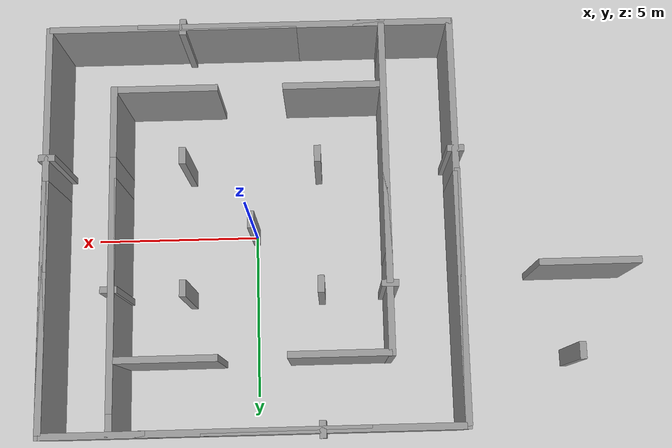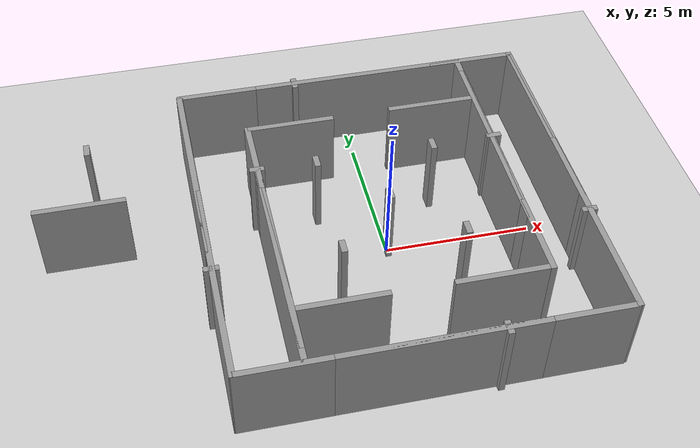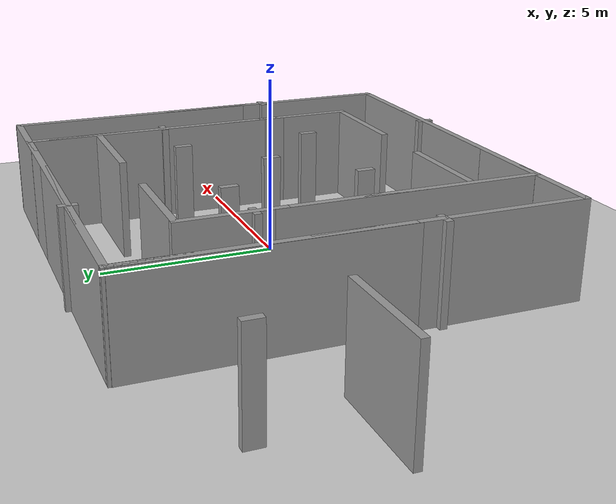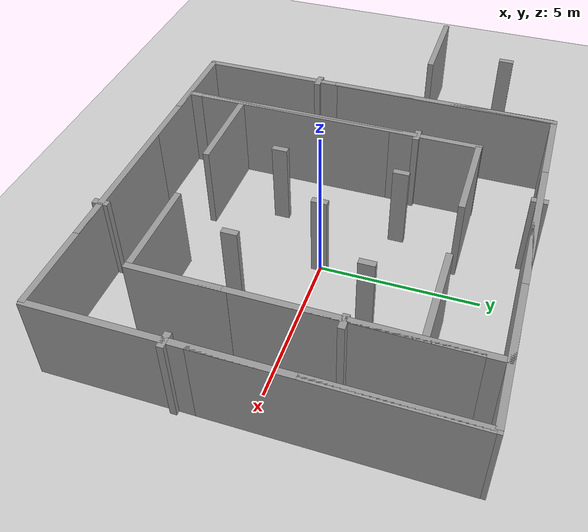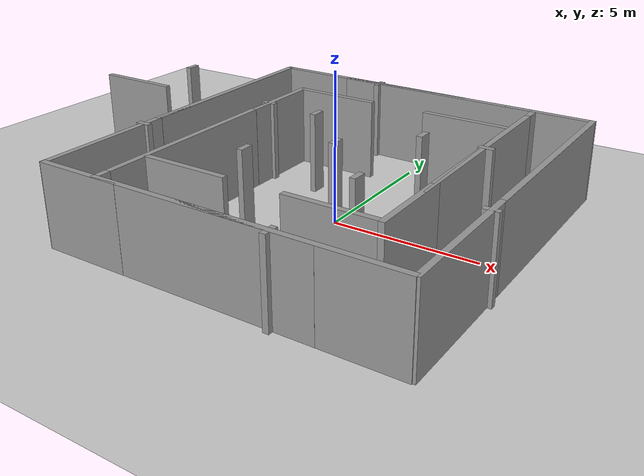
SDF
<sdf version="1.6">
 <world name="default">
  <light name="sun" type="directional">
   <pose>0 0 10 0 -0 0</pose>
   <diffuse>0.8 0.8 0.8 1</diffuse>
   <specular>0.2 0.2 0.2 1</specular>
   <attenuation>
    <range>1000</range>
    <constant>0.9</constant>
    <linear>0.01</linear>
    <quadratic>0.001</quadratic>
   </attenuation>
   <direction>-0.5 0.1 -0.9</direction>
  </light>
  <model name="ground_plane">
   <static>1</static>
   <link name="link">
    <collision name="collision">
     <geometry><plane><normal>0 0 1</normal><size>100 100</size></plane></geometry>
     <surface>
      <contact><collide_bitmask>65535</collide_bitmask></contact>
      <friction><ode><mu>100</mu><mu2>50</mu2></ode></friction>
     </surface>
    </collision>
    <visual name="visual">
     <cast_shadows>0</cast_shadows>
     <geometry><plane><normal>0 0 1</normal><size>100 100</size></plane></geometry>
     <material>
      <script><uri>file://media/materials/scripts/gazebo.material</uri><name>Gazebo/Grey</name></script>
     </material>
    </visual>
   </link>
  </model>
  <gravity>0 0 -9.8</gravity>
  <magnetic_field>6e-06 2.3e-05 -4.2e-05</magnetic_field>
  <atmosphere type="adiabatic"/>
  <physics name="default_physics" default="0" type="ode">
   <max_step_size>0.001</max_step_size>
   <real_time_factor>1</real_time_factor>
   <real_time_update_rate>1000</real_time_update_rate>
  </physics>
  <scene><ambient>0.4 0.4 0.4 1</ambient><background>0.7 0.7 0.7 1</background><shadows>1</shadows></scene>
  <audio><device>default</device></audio>
  <spherical_coordinates>
   <surface_model>EARTH_WGS84</surface_model>
   <latitude_deg>0</latitude_deg>
   <longitude_deg>0</longitude_deg>
   <elevation>0</elevation>
   <heading_deg>0</heading_deg>
  </spherical_coordinates>
  <model name="grey_wall_0">
   <static>1</static>
   <link name="link">
    <pose>0 0 1.4 0 -0 0</pose>
    <collision name="collision"><geometry><box><size>0.5 0.2 2.8</size></box></geometry></collision>
    <visual name="visual">
     <cast_shadows>0</cast_shadows>
     <geometry><box><size>0.5 0.2 2.8</size></box></geometry>
     <material>
      <script>
       <uri>model://grey_wall/materials/scripts</uri>
       <uri>model://grey_wall/materials/textures</uri>
       <name>vrc/grey_wall</name>
      </script>
     </material>
    </visual>
   </link>
   <pose>-9.43423 4.05192 0 0 -0 1.57</pose>
  </model>
  <model name="grey_wall_1">
   <static>1</static>
   <link name="link">
    <pose>0 0 1.4 0 -0 0</pose>
    <collision name="collision"><geometry><box><size>7.5 0.2 2.8</size></box></geometry></collision>
    <visual name="visual">
     <cast_shadows>0</cast_shadows>
     <geometry><box><size>7.5 0.2 2.8</size></box></geometry>
     <material>
      <script>
       <uri>model://grey_wall/materials/scripts</uri>
       <uri>model://grey_wall/materials/textures</uri>
       <name>vrc/grey_wall</name>
      </script>
     </material>
    </visual>
   </link>
   <pose>4.06703 1.74861 0 0 -0 1.57</pose>
  </model>
  <model name="grey_wall_1_clone">
   <static>1</static>
   <link name="link">
    <pose>0 0 1.4 0 -0 0</pose>
    <collision name="collision"><geometry><box><size>7.5 0.2 2.8</size></box></geometry></collision>
    <visual name="visual">
     <cast_shadows>0</cast_shadows>
     <geometry><box><size>7.5 0.2 2.8</size></box></geometry>
     <material>
      <script>
       <uri>model://grey_wall/materials/scripts</uri>
       <uri>model://grey_wall/materials/textures</uri>
       <name>vrc/grey_wall</name>
      </script>
     </material>
    </visual>
   </link>
   <pose>-4.00257 -1.78972 0 0 -0 1.57</pose>
  </model>
  <model name="grey_wall_1_clone_clone">
   <static>1</static>
   <link name="link">
    <pose>0 0 1.4 0 -0 0</pose>
    <collision name="collision"><geometry><box><size>7.5 0.2 2.8</size></box></geometry></collision>
    <visual name="visual">
     <cast_shadows>0</cast_shadows>
     <geometry><box><size>7.5 0.2 2.8</size></box></geometry>
     <material>
      <script>
       <uri>model://grey_wall/materials/scripts</uri>
       <uri>model://grey_wall/materials/textures</uri>
       <name>vrc/grey_wall</name>
      </script>
     </material>
    </visual>
   </link>
   <pose>-4.00463 -2.27948 0 0 -0 1.57</pose>
  </model>
  <model name="grey_wall_clone_clone_clone">
   <static>1</static>
   <link name="link">
    <pose>0 0 1.4 0 -0 0</pose>
    <collision name="collision"><geometry><box><size>7.5 0.2 2.8</size></box></geometry></collision>
    <visual name="visual">
     <cast_shadows>0</cast_shadows>
     <geometry><box><size>7.5 0.2 2.8</size></box></geometry>
     <material>
      <script>
       <uri>model://grey_wall/materials/scripts</uri>
       <uri>model://grey_wall/materials/textures</uri>
       <name>vrc/grey_wall</name>
      </script>
     </material>
    </visual>
   </link>
   <pose>-0.358299 -6.03778 0 0 -0 0</pose>
  </model>
  <model name="grey_wall_clone_clone_clone_0">
   <static>1</static>
   <link name="link">
    <pose>0 0 1.4 0 -0 0</pose>
    <collision name="collision"><geometry><box><size>7.5 0.2 2.8</size></box></geometry></collision>
    <visual name="visual">
     <cast_shadows>0</cast_shadows>
     <geometry><box><size>7.5 0.2 2.8</size></box></geometry>
     <material>
      <script>
       <uri>model://grey_wall/materials/scripts</uri>
       <uri>model://grey_wall/materials/textures</uri>
       <name>vrc/grey_wall</name>
      </script>
     </material>
    </visual>
   </link>
   <pose>2.3111 -6.03619 0 0 -0 0</pose>
  </model>
  <model name="grey_wall_1_clone_0">
   <static>1</static>
   <link name="link">
    <pose>0 0 1.4 0 -0 0</pose>
    <collision name="collision"><geometry><box><size>7.5 0.2 2.8</size></box></geometry></collision>
    <visual name="visual">
     <cast_shadows>0</cast_shadows>
     <geometry><box><size>7.5 0.2 2.8</size></box></geometry>
     <material>
      <script>
       <uri>model://grey_wall/materials/scripts</uri>
       <uri>model://grey_wall/materials/textures</uri>
       <name>vrc/grey_wall</name>
      </script>
     </material>
    </visual>
   </link>
   <pose>6.05369 -2.35434 0 0 -0 1.57</pose>
  </model>
  <model name="grey_wall_1_clone_1">
   <static>1</static>
   <link name="link">
    <pose>0 0 1.4 0 -0 0</pose>
    <collision name="collision"><geometry><box><size>7.5 0.2 2.8</size></box></geometry></collision>
    <visual name="visual">
     <cast_shadows>0</cast_shadows>
     <geometry><box><size>7.5 0.2 2.8</size></box></geometry>
     <material>
      <script>
       <uri>model://grey_wall/materials/scripts</uri>
       <uri>model://grey_wall/materials/textures</uri>
       <name>vrc/grey_wall</name>
      </script>
     </material>
    </visual>
   </link>
   <pose>6.05862 2.29556 0 0 -0 1.57</pose>
  </model>
  <model name="grey_wall_0_clone">
   <static>1</static>
   <link name="link">
    <pose>0 0 1.4 0 -0 0</pose>
    <collision name="collision"><geometry><box><size>7.5 0.2 2.8</size></box></geometry></collision>
    <visual name="visual">
     <cast_shadows>0</cast_shadows>
     <geometry><box><size>7.5 0.2 2.8</size></box></geometry>
     <material>
      <script>
       <uri>model://grey_wall/materials/scripts</uri>
       <uri>model://grey_wall/materials/textures</uri>
       <name>vrc/grey_wall</name>
      </script>
     </material>
    </visual>
   </link>
   <pose>0.395945 6.07878 0 0 -0 0</pose>
  </model>
  <model name="grey_wall_0_clone_0">
   <static>1</static>
   <link name="link">
    <pose>0 0 1.4 0 -0 0</pose>
    <collision name="collision"><geometry><box><size>7.5 0.2 2.8</size></box></geometry></collision>
    <visual name="visual">
     <cast_shadows>0</cast_shadows>
     <geometry><box><size>7.5 0.2 2.8</size></box></geometry>
     <material>
      <script>
       <uri>model://grey_wall/materials/scripts</uri>
       <uri>model://grey_wall/materials/textures</uri>
       <name>vrc/grey_wall</name>
      </script>
     </material>
    </visual>
   </link>
   <pose>-2.27392 6.07905 0 0 -0 0</pose>
  </model>
  <model name="grey_wall_1_clone_clone_clone">
   <static>1</static>
   <link name="link">
    <pose>0 0 1.4 0 -0 0</pose>
    <collision name="collision"><geometry><box><size>7.5 0.2 2.8</size></box></geometry></collision>
    <visual name="visual">
     <cast_shadows>0</cast_shadows>
     <geometry><box><size>7.5 0.2 2.8</size></box></geometry>
     <material>
      <script>
       <uri>model://grey_wall/materials/scripts</uri>
       <uri>model://grey_wall/materials/textures</uri>
       <name>vrc/grey_wall</name>
      </script>
     </material>
    </visual>
   </link>
   <pose>-6.06651 2.42489 0 0 -0 1.57</pose>
  </model>
  <model name="grey_wall_1_clone_clone_clone_0">
   <static>1</static>
   <link name="link">
    <pose>0 0 1.4 0 -0 0</pose>
    <collision name="collision"><geometry><box><size>7.5 0.2 2.8</size></box></geometry></collision>
    <visual name="visual">
     <cast_shadows>0</cast_shadows>
     <geometry><box><size>7.5 0.2 2.8</size></box></geometry>
     <material>
      <script>
       <uri>model://grey_wall/materials/scripts</uri>
       <uri>model://grey_wall/materials/textures</uri>
       <name>vrc/grey_wall</name>
      </script>
     </material>
    </visual>
   </link>
   <pose>-6.07531 -2.38028 0 0 -0 1.57</pose>
  </model>
  <model name="grey_wall_1_clone_2">
   <static>1</static>
   <link name="link">
    <pose>0 0 1.4 0 -0 0</pose>
    <collision name="collision"><geometry><box><size>7.5 0.2 2.8</size></box></geometry></collision>
    <visual name="visual">
     <cast_shadows>0</cast_shadows>
     <geometry><box><size>7.5 0.2 2.8</size></box></geometry>
     <material>
      <script>
       <uri>model://grey_wall/materials/scripts</uri>
       <uri>model://grey_wall/materials/textures</uri>
       <name>vrc/grey_wall</name>
      </script>
     </material>
    </visual>
   </link>
   <pose>4.06582 2.38886 0 0 -0 1.57</pose>
  </model>
  <model name="grey_wall_1_clone_1_clone">
   <static>1</static>
   <link name="link">
    <pose>0 0 1.4 0 -0 0</pose>
    <collision name="collision"><geometry><box><size>7.5 0.2 2.8</size></box></geometry></collision>
    <visual name="visual">
     <cast_shadows>0</cast_shadows>
     <geometry><box><size>7.5 0.2 2.8</size></box></geometry>
     <material>
      <script>
       <uri>model://grey_wall/materials/scripts</uri>
       <uri>model://grey_wall/materials/textures</uri>
       <name>vrc/grey_wall</name>
      </script>
     </material>
    </visual>
   </link>
   <pose>6.05464 2.42889 0 0 -0 1.57</pose>
  </model>
  <model name="grey_wall_1_clone_1_clone_0">
   <static>1</static>
   <link name="link">
    <pose>0 0 1.4 0 -0 0</pose>
    <collision name="collision"><geometry><box><size>7.5 0.2 2.8</size></box></geometry></collision>
    <visual name="visual">
     <cast_shadows>0</cast_shadows>
     <geometry><box><size>7.5 0.2 2.8</size></box></geometry>
     <material>
      <script>
       <uri>model://grey_wall/materials/scripts</uri>
       <uri>model://grey_wall/materials/textures</uri>
       <name>vrc/grey_wall</name>
      </script>
     </material>
    </visual>
   </link>
   <pose>-6.08287 2.33795 0 0 -0 1.57</pose>
  </model>
  <model name="grey_wall_0_clone_1">
   <static>1</static>
   <link name="link">
    <pose>0 0 1.4 0 -0 0</pose>
    <collision name="collision"><geometry><box><size>3 0.2 2.8</size></box></geometry></collision>
    <visual name="visual">
     <cast_shadows>0</cast_shadows>
     <geometry><box><size>3 0.2 2.8</size></box></geometry>
     <material>
      <script>
       <uri>model://grey_wall/materials/scripts</uri>
       <uri>model://grey_wall/materials/textures</uri>
       <name>vrc/grey_wall</name>
      </script>
     </material>
    </visual>
   </link>
   <pose>2.48128 3.99569 0 0 -0 0</pose>
  </model>
  <model name="grey_wall_0_clone_2">
   <static>1</static>
   <link name="link">
    <pose>0 0 1.4 0 -0 0</pose>
    <collision name="collision"><geometry><box><size>3 0.2 2.8</size></box></geometry></collision>
    <visual name="visual">
     <cast_shadows>0</cast_shadows>
     <geometry><box><size>3 0.2 2.8</size></box></geometry>
     <material>
      <script>
       <uri>model://grey_wall/materials/scripts</uri>
       <uri>model://grey_wall/materials/textures</uri>
       <name>vrc/grey_wall</name>
      </script>
     </material>
    </visual>
   </link>
   <pose>-2.49232 3.9612 0 0 -0 0</pose>
  </model>
  <model name="grey_wall_0_clone_3">
   <static>1</static>
   <link name="link">
    <pose>0 0 1.4 0 -0 0</pose>
    <collision name="collision"><geometry><box><size>3 0.2 2.8</size></box></geometry></collision>
    <visual name="visual">
     <cast_shadows>0</cast_shadows>
     <geometry><box><size>3 0.2 2.8</size></box></geometry>
     <material>
      <script>
       <uri>model://grey_wall/materials/scripts</uri>
       <uri>model://grey_wall/materials/textures</uri>
       <name>vrc/grey_wall</name>
      </script>
     </material>
    </visual>
   </link>
   <pose>-9.84414 1.47219 0 0 -0 0</pose>
  </model>
  <model name="grey_wall_0_clone_4">
   <static>1</static>
   <link name="link">
    <pose>0 0 1.4 0 -0 0</pose>
    <collision name="collision"><geometry><box><size>3 0.2 2.8</size></box></geometry></collision>
    <visual name="visual">
     <cast_shadows>0</cast_shadows>
     <geometry><box><size>3 0.2 2.8</size></box></geometry>
     <material>
      <script>
       <uri>model://grey_wall/materials/scripts</uri>
       <uri>model://grey_wall/materials/textures</uri>
       <name>vrc/grey_wall</name>
      </script>
     </material>
    </visual>
   </link>
   <pose>-3.99565 2.57281 0 0 -0 1.57</pose>
  </model>
  <model name="grey_wall_0_clone_3_clone">
   <static>1</static>
   <link name="link">
    <pose>0 0 1.4 0 -0 0</pose>
    <collision name="collision"><geometry><box><size>3 0.2 2.8</size></box></geometry></collision>
    <visual name="visual">
     <cast_shadows>0</cast_shadows>
     <geometry><box><size>3 0.2 2.8</size></box></geometry>
     <material>
      <script>
       <uri>model://grey_wall/materials/scripts</uri>
       <uri>model://grey_wall/materials/textures</uri>
       <name>vrc/grey_wall</name>
      </script>
     </material>
    </visual>
   </link>
   <pose>-4.64625 -6.04063 0 0 -0 0</pose>
  </model>
  <model name="grey_wall_0_clone_3_clone_0">
   <static>1</static>
   <link name="link">
    <pose>0 0 1.4 0 -0 0</pose>
    <collision name="collision"><geometry><box><size>3 0.2 2.8</size></box></geometry></collision>
    <visual name="visual">
     <cast_shadows>0</cast_shadows>
     <geometry><box><size>3 0.2 2.8</size></box></geometry>
     <material>
      <script>
       <uri>model://grey_wall/materials/scripts</uri>
       <uri>model://grey_wall/materials/textures</uri>
       <name>vrc/grey_wall</name>
      </script>
     </material>
    </visual>
   </link>
   <pose>4.54341 6.08137 0 0 -0 0</pose>
  </model>
  <model name="grey_wall_0_clone_5">
   <static>1</static>
   <link name="link">
    <pose>0 0 1.4 0 -0 0</pose>
    <collision name="collision"><geometry><box><size>3 0.2 2.8</size></box></geometry></collision>
    <visual name="visual">
     <cast_shadows>0</cast_shadows>
     <geometry><box><size>3 0.2 2.8</size></box></geometry>
     <material>
      <script>
       <uri>model://grey_wall/materials/scripts</uri>
       <uri>model://grey_wall/materials/textures</uri>
       <name>vrc/grey_wall</name>
      </script>
     </material>
    </visual>
   </link>
   <pose>4.06538 -2.69307 0 0 -0 1.57</pose>
  </model>
  <model name="grey_wall_0_clone_3_clone_1">
   <static>1</static>
   <link name="link">
    <pose>0 0 1.4 0 -0 0</pose>
    <collision name="collision"><geometry><box><size>3 0.2 2.8</size></box></geometry></collision>
    <visual name="visual">
     <cast_shadows>0</cast_shadows>
     <geometry><box><size>3 0.2 2.8</size></box></geometry>
     <material>
      <script>
       <uri>model://grey_wall/materials/scripts</uri>
       <uri>model://grey_wall/materials/textures</uri>
       <name>vrc/grey_wall</name>
      </script>
     </material>
    </visual>
   </link>
   <pose>-2.48398 -4.08182 0 0 -0 0</pose>
  </model>
  <model name="grey_wall_0_clone_3_clone_2">
   <static>1</static>
   <link name="link">
    <pose>0 0 1.4 0 -0 0</pose>
    <collision name="collision"><geometry><box><size>3 0.2 2.8</size></box></geometry></collision>
    <visual name="visual">
     <cast_shadows>0</cast_shadows>
     <geometry><box><size>3 0.2 2.8</size></box></geometry>
     <material>
      <script>
       <uri>model://grey_wall/materials/scripts</uri>
       <uri>model://grey_wall/materials/textures</uri>
       <name>vrc/grey_wall</name>
      </script>
     </material>
    </visual>
   </link>
   <pose>2.4664 -4.08853 0 0 -0 0</pose>
  </model>
  <model name="grey_wall_0_clone_6">
   <static>1</static>
   <link name="link">
    <pose>0 0 1.4 0 -0 0</pose>
    <collision name="collision"><geometry><box><size>0.5 0.2 2.8</size></box></geometry></collision>
    <visual name="visual">
     <cast_shadows>0</cast_shadows>
     <geometry><box><size>0.5 0.2 2.8</size></box></geometry>
     <material>
      <script>
       <uri>model://grey_wall/materials/scripts</uri>
       <uri>model://grey_wall/materials/textures</uri>
       <name>vrc/grey_wall</name>
      </script>
     </material>
    </visual>
   </link>
   <pose>-2.00676 1.93546 0 0 -0 1.57</pose>
  </model>
  <model name="grey_wall_0_clone_7">
   <static>1</static>
   <link name="link">
    <pose>0 0 1.4 0 -0 0</pose>
    <collision name="collision"><geometry><box><size>0.5 0.2 2.8</size></box></geometry></collision>
    <visual name="visual">
     <cast_shadows>0</cast_shadows>
     <geometry><box><size>0.5 0.2 2.8</size></box></geometry>
     <material>
      <script>
       <uri>model://grey_wall/materials/scripts</uri>
       <uri>model://grey_wall/materials/textures</uri>
       <name>vrc/grey_wall</name>
      </script>
     </material>
    </visual>
   </link>
   <pose>1.99538 1.96777 0 0 -0 1.57</pose>
  </model>
  <model name="grey_wall_0_clone_8">
   <static>1</static>
   <link name="link">
    <pose>0 0 1.4 0 -0 0</pose>
    <collision name="collision"><geometry><box><size>0.5 0.2 2.8</size></box></geometry></collision>
    <visual name="visual">
     <cast_shadows>0</cast_shadows>
     <geometry><box><size>0.5 0.2 2.8</size></box></geometry>
     <material>
      <script>
       <uri>model://grey_wall/materials/scripts</uri>
       <uri>model://grey_wall/materials/textures</uri>
       <name>vrc/grey_wall</name>
      </script>
     </material>
    </visual>
   </link>
   <pose>-1.98302 -1.96899 0 0 -0 1.57</pose>
  </model>
  <model name="grey_wall_0_clone_9">
   <static>1</static>
   <link name="link">
    <pose>0 0 1.4 0 -0 0</pose>
    <collision name="collision"><geometry><box><size>0.5 0.2 2.8</size></box></geometry></collision>
    <visual name="visual">
     <cast_shadows>0</cast_shadows>
     <geometry><box><size>0.5 0.2 2.8</size></box></geometry>
     <material>
      <script>
       <uri>model://grey_wall/materials/scripts</uri>
       <uri>model://grey_wall/materials/textures</uri>
       <name>vrc/grey_wall</name>
      </script>
     </material>
    </visual>
   </link>
   <pose>2.01899 -2.0014 0 0 -0 1.57</pose>
  </model>
  <model name="grey_wall_0_clone_10">
   <static>1</static>
   <link name="link">
    <pose>0 0 1.4 0 -0 0</pose>
    <collision name="collision"><geometry><box><size>0.5 0.2 2.8</size></box></geometry></collision>
    <visual name="visual">
     <cast_shadows>0</cast_shadows>
     <geometry><box><size>0.5 0.2 2.8</size></box></geometry>
     <material>
      <script>
       <uri>model://grey_wall/materials/scripts</uri>
       <uri>model://grey_wall/materials/textures</uri>
       <name>vrc/grey_wall</name>
      </script>
     </material>
    </visual>
   </link>
   <pose>0.016514 -0.016119 0 0 -0 1.57</pose>
  </model>
  <model name="grey_wall_0_clone_11">
   <static>1</static>
   <link name="link">
    <pose>0 0 1.4 0 -0 0</pose>
    <collision name="collision"><geometry><box><size>0.5 0.2 2.8</size></box></geometry></collision>
    <visual name="visual">
     <cast_shadows>0</cast_shadows>
     <geometry><box><size>0.5 0.2 2.8</size></box></geometry>
     <material>
      <script>
       <uri>model://grey_wall/materials/scripts</uri>
       <uri>model://grey_wall/materials/textures</uri>
       <name>vrc/grey_wall</name>
      </script>
     </material>
    </visual>
   </link>
   <pose>-6.08973 -2.02435 0 0 0 -0.004824</pose>
  </model>
  <model name="grey_wall_0_clone_11_clone">
   <static>1</static>
   <link name="link">
    <pose>0 0 1.4 0 -0 0</pose>
    <collision name="collision"><geometry><box><size>0.5 0.2 2.8</size></box></geometry></collision>
    <visual name="visual">
     <cast_shadows>0</cast_shadows>
     <geometry><box><size>0.5 0.2 2.8</size></box></geometry>
     <material>
      <script>
       <uri>model://grey_wall/materials/scripts</uri>
       <uri>model://grey_wall/materials/textures</uri>
       <name>vrc/grey_wall</name>
      </script>
     </material>
    </visual>
   </link>
   <pose>-4.00987 1.96788 0 0 0 -0.004824</pose>
  </model>
  <model name="grey_wall_0_clone_11_clone_0">
   <static>1</static>
   <link name="link">
    <pose>0 0 1.4 0 -0 0</pose>
    <collision name="collision"><geometry><box><size>0.5 0.2 2.8</size></box></geometry></collision>
    <visual name="visual">
     <cast_shadows>0</cast_shadows>
     <geometry><box><size>0.5 0.2 2.8</size></box></geometry>
     <material>
      <script>
       <uri>model://grey_wall/materials/scripts</uri>
       <uri>model://grey_wall/materials/textures</uri>
       <name>vrc/grey_wall</name>
      </script>
     </material>
    </visual>
   </link>
   <pose>4.13772 1.95907 0 0 0 -0.004824</pose>
  </model>
  <model name="grey_wall_0_clone_11_clone_1">
   <static>1</static>
   <link name="link">
    <pose>0 0 1.4 0 -0 0</pose>
    <collision name="collision"><geometry><box><size>0.5 0.2 2.8</size></box></geometry></collision>
    <visual name="visual">
     <cast_shadows>0</cast_shadows>
     <geometry><box><size>0.5 0.2 2.8</size></box></geometry>
     <material>
      <script>
       <uri>model://grey_wall/materials/scripts</uri>
       <uri>model://grey_wall/materials/textures</uri>
       <name>vrc/grey_wall</name>
      </script>
     </material>
    </visual>
   </link>
   <pose>6.03534 -2.0287 0 0 0 -0.004824</pose>
  </model>
  <model name="grey_wall_0_clone_12">
   <static>1</static>
   <link name="link">
    <pose>0 0 1.4 0 -0 0</pose>
    <collision name="collision"><geometry><box><size>0.5 0.2 2.8</size></box></geometry></collision>
    <visual name="visual">
     <cast_shadows>0</cast_shadows>
     <geometry><box><size>0.5 0.2 2.8</size></box></geometry>
     <material>
      <script>
       <uri>model://grey_wall/materials/scripts</uri>
       <uri>model://grey_wall/materials/textures</uri>
       <name>vrc/grey_wall</name>
      </script>
     </material>
    </visual>
   </link>
   <pose>-1.96237 6.07256 0 0 -0 1.57</pose>
  </model>
  <model name="grey_wall_0_clone_13">
   <static>1</static>
   <link name="link">
    <pose>0 0 1.4 0 -0 0</pose>
    <collision name="collision"><geometry><box><size>0.5 0.2 2.8</size></box></geometry></collision>
    <visual name="visual">
     <cast_shadows>0</cast_shadows>
     <geometry><box><size>0.5 0.2 2.8</size></box></geometry>
     <material>
      <script>
       <uri>model://grey_wall/materials/scripts</uri>
       <uri>model://grey_wall/materials/textures</uri>
       <name>vrc/grey_wall</name>
      </script>
     </material>
    </visual>
   </link>
   <pose>2.01595 -6.0482 0 0 -0 1.57</pose>
  </model>
 </world>
</sdf>
